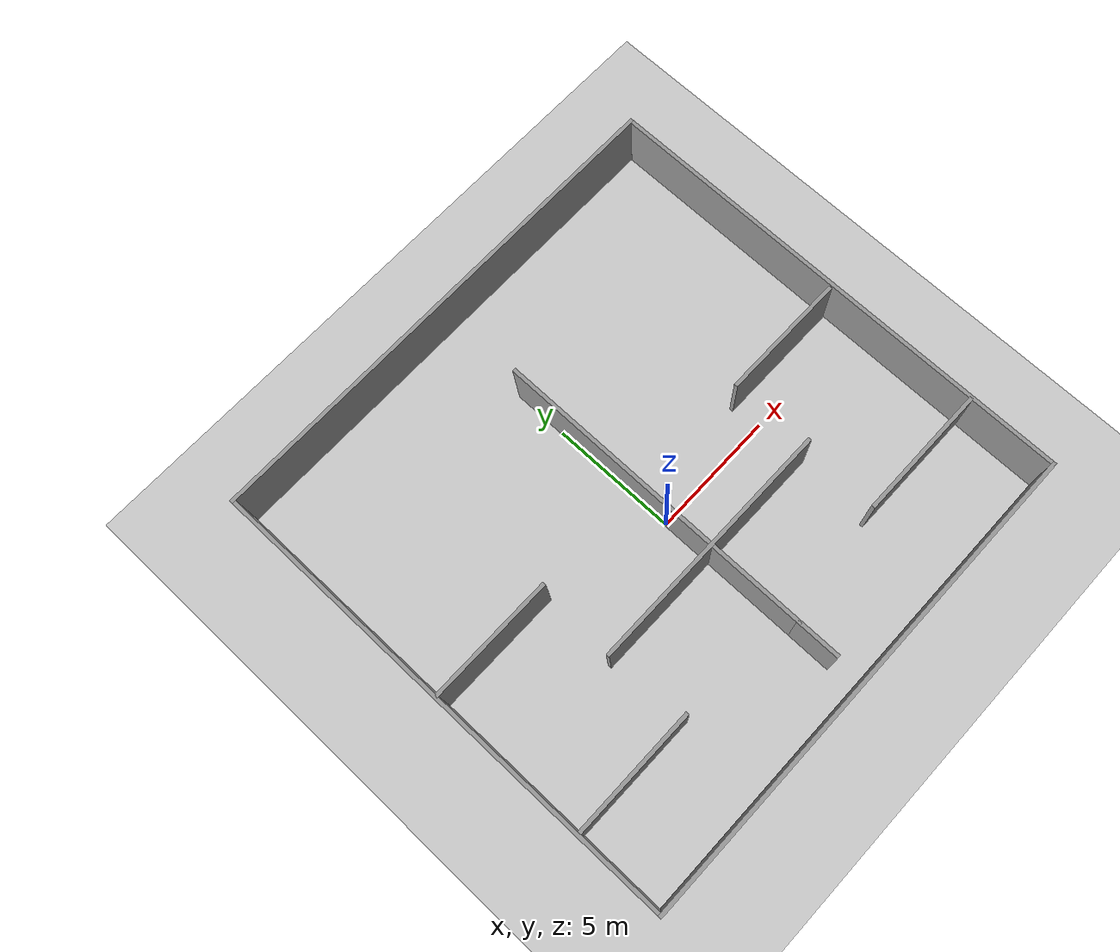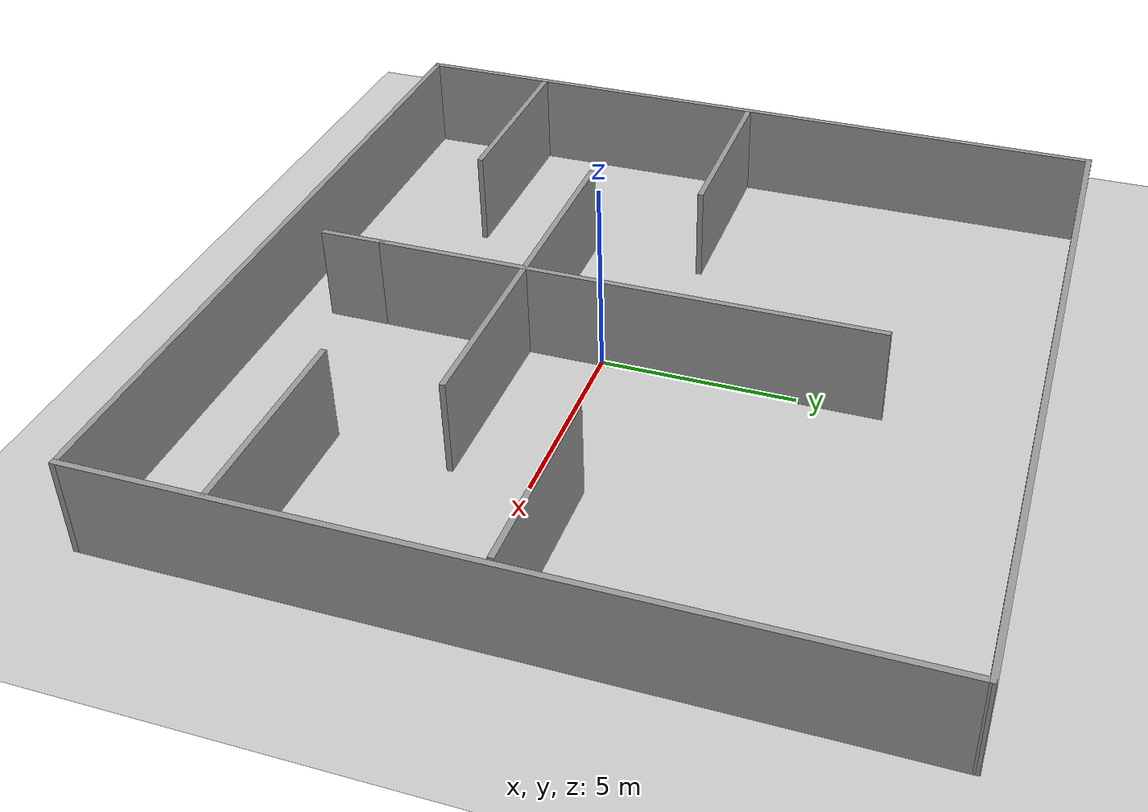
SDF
<sdf version="1.7">
 <world name="default">
  <light name="sun" type="directional">
   <pose>0 0 10 0 -0 0</pose>
   <diffuse>0.8 0.8 0.8 1</diffuse>
   <specular>0.2 0.2 0.2 1</specular>
   <attenuation>
    <range>1000</range>
    <constant>0.9</constant>
    <linear>0.01</linear>
    <quadratic>0.001</quadratic>
   </attenuation>
   <direction>-0.5 0.1 -0.9</direction>
   <spot><inner_angle>0</inner_angle><outer_angle>0</outer_angle><falloff>0</falloff></spot>
  </light>
  <model name="ground_plane">
   <static>1</static>
   <link name="link">
    <collision name="collision">
     <geometry><plane><normal>0 0 1</normal><size>100 100</size></plane></geometry>
     <surface>
      <contact><collide_bitmask>65535</collide_bitmask></contact>
      <friction><ode><mu>100</mu><mu2>50</mu2></ode></friction>
     </surface>
    </collision>
    <visual name="visual">
     <cast_shadows>0</cast_shadows>
     <geometry><plane><normal>0 0 1</normal><size>100 100</size></plane></geometry>
     <material>
      <script><uri>file://media/materials/scripts/gazebo.material</uri><name>Gazebo/Grey</name></script>
     </material>
    </visual>
   </link>
  </model>
  <gravity>0 0 -9.8</gravity>
  <magnetic_field>6e-06 2.3e-05 -4.2e-05</magnetic_field>
  <atmosphere type="adiabatic"/>
  <physics type="ode">
   <max_step_size>0.001</max_step_size>
   <real_time_factor>1</real_time_factor>
   <real_time_update_rate>1000</real_time_update_rate>
  </physics>
  <scene><ambient>0.4 0.4 0.4 1</ambient><background>0.7 0.7 0.7 1</background><shadows>1</shadows></scene>
  <audio><device>default</device></audio>
  <spherical_coordinates>
   <surface_model>EARTH_WGS84</surface_model>
   <latitude_deg>0</latitude_deg>
   <longitude_deg>0</longitude_deg>
   <elevation>0</elevation>
   <heading_deg>0</heading_deg>
  </spherical_coordinates>
  <model name="D1_playfield">
   <pose>0.106845 1.10204 0 0 -0 0</pose>
   <link name="Wall_0">
    <collision name="Wall_0_Collision">
     <geometry><box><size>19.704 0.15 2.5</size></box></geometry>
     <pose>0 0 1.25 0 -0 0</pose>
    </collision>
    <visual name="Wall_0_Visual">
     <pose>0 0 1.25 0 -0 0</pose>
     <geometry><box><size>19.704 0.15 2.5</size></box></geometry>
     <material>
      <script><uri>file://media/materials/scripts/gazebo.material</uri><name>Gazebo/Grey</name></script>
      <ambient>1 1 1 1</ambient>
     </material>
     <meta><layer>0</layer></meta>
    </visual>
    <pose>-0 9.66923 0 0 -0 0.002101</pose>
   </link>
   <link name="Wall_1">
    <collision name="Wall_1_Collision">
     <geometry><box><size>19.5 0.15 2.5</size></box></geometry>
     <pose>0 0 1.25 0 -0 0</pose>
    </collision>
    <visual name="Wall_1_Visual">
     <pose>0 0 1.25 0 -0 0</pose>
     <geometry><box><size>19.5 0.15 2.5</size></box></geometry>
     <material>
      <script><uri>file://media/materials/scripts/gazebo.material</uri><name>Gazebo/Grey</name></script>
      <ambient>1 1 1 1</ambient>
     </material>
     <meta><layer>0</layer></meta>
    </visual>
    <pose>9.77699 -0.002623 0 0 -0 -1.5708</pose>
   </link>
   <link name="Wall_11">
    <collision name="Wall_11_Collision">
     <geometry><box><size>10 0.15 2.5</size></box></geometry>
     <pose>0 0 1.25 0 -0 0</pose>
    </collision>
    <visual name="Wall_11_Visual">
     <pose>0 0 1.25 0 -0 0</pose>
     <geometry><box><size>10 0.15 2.5</size></box></geometry>
     <material>
      <script><uri>file://media/materials/scripts/gazebo.material</uri><name>Gazebo/Grey</name></script>
      <ambient>1 1 1 1</ambient>
     </material>
     <meta><layer>0</layer></meta>
    </visual>
    <pose>-0.097983 -3.0741 0 0 -0 0</pose>
   </link>
   <link name="Wall_13">
    <collision name="Wall_13_Collision">
     <geometry><box><size>5 0.15 2.5</size></box></geometry>
     <pose>0 0 1.25 0 -0 0</pose>
    </collision>
    <visual name="Wall_13_Visual">
     <pose>0 0 1.25 0 -0 0</pose>
     <geometry><box><size>5 0.15 2.5</size></box></geometry>
     <material>
      <script><uri>file://media/materials/scripts/gazebo.material</uri><name>Gazebo/Grey</name></script>
      <ambient>1 1 1 1</ambient>
     </material>
     <meta><layer>0</layer></meta>
    </visual>
    <pose>-7.20545 -6.1904 0 0 -0 0</pose>
   </link>
   <link name="Wall_15">
    <collision name="Wall_15_Collision">
     <geometry><box><size>5.25 0.15 2.5</size></box></geometry>
     <pose>0 0 1.25 0 -0 0</pose>
    </collision>
    <visual name="Wall_15_Visual">
     <pose>0 0 1.25 0 -0 0</pose>
     <geometry><box><size>5.25 0.15 2.5</size></box></geometry>
     <material>
      <script><uri>file://media/materials/scripts/gazebo.material</uri><name>Gazebo/Grey</name></script>
      <ambient>1 1 1 1</ambient>
     </material>
     <meta><layer>0</layer></meta>
    </visual>
    <pose>7.13598 -6.17051 0 0 -0 0</pose>
   </link>
   <link name="Wall_17">
    <collision name="Wall_17_Collision">
     <geometry><box><size>1.75 0.15 2.5</size></box></geometry>
     <pose>0 0 1.25 0 -0 0</pose>
    </collision>
    <visual name="Wall_17_Visual">
     <pose>0 0 1.25 0 -0 0</pose>
     <geometry><box><size>1.75 0.15 2.5</size></box></geometry>
     <material>
      <script><uri>file://media/materials/scripts/gazebo.material</uri><name>Gazebo/Grey</name></script>
      <ambient>1 1 1 1</ambient>
     </material>
     <meta><layer>0</layer></meta>
    </visual>
    <pose>-0.081444 -7.69984 0 0 -0 1.5708</pose>
   </link>
   <link name="Wall_18">
    <collision name="Wall_18_Collision">
     <geometry><box><size>13 0.15 2.5</size></box></geometry>
     <pose>0 0 1.25 0 -0 0</pose>
    </collision>
    <visual name="Wall_18_Visual">
     <pose>0 0 1.25 0 -0 0</pose>
     <geometry><box><size>13 0.15 2.5</size></box></geometry>
     <material>
      <script><uri>file://media/materials/scripts/gazebo.material</uri><name>Gazebo/Grey</name></script>
      <ambient>1 1 1 1</ambient>
     </material>
     <meta><layer>0</layer></meta>
    </visual>
    <pose>-0.081444 -0.474839 0 0 -0 1.5708</pose>
   </link>
   <link name="Wall_2">
    <collision name="Wall_2_Collision">
     <geometry><box><size>19.704 0.15 2.5</size></box></geometry>
     <pose>0 0 1.25 0 -0 0</pose>
    </collision>
    <visual name="Wall_2_Visual">
     <pose>0 0 1.25 0 -0 0</pose>
     <geometry><box><size>19.704 0.15 2.5</size></box></geometry>
     <material>
      <script><uri>file://media/materials/scripts/gazebo.material</uri><name>Gazebo/Grey</name></script>
      <ambient>1 1 1 1</ambient>
     </material>
     <meta><layer>0</layer></meta>
    </visual>
    <pose>-0 -9.68375 0 0 -0 -3.14097</pose>
   </link>
   <link name="Wall_5">
    <collision name="Wall_5_Collision">
     <geometry><box><size>19.5 0.15 2.5</size></box></geometry>
     <pose>0 0 1.25 0 -0 0</pose>
    </collision>
    <visual name="Wall_5_Visual">
     <pose>0 0 1.25 0 -0 0</pose>
     <geometry><box><size>19.5 0.15 2.5</size></box></geometry>
     <material>
      <script><uri>file://media/materials/scripts/gazebo.material</uri><name>Gazebo/Grey</name></script>
      <ambient>1 1 1 1</ambient>
     </material>
     <meta><layer>0</layer></meta>
    </visual>
    <pose>-9.77699 -0.014879 0 0 -0 -1.5708</pose>
   </link>
   <link name="Wall_7">
    <collision name="Wall_7_Collision">
     <geometry><box><size>5 0.15 2.5</size></box></geometry>
     <pose>0 0 1.25 0 -0 0</pose>
    </collision>
    <visual name="Wall_7_Visual">
     <pose>0 0 1.25 0 -0 0</pose>
     <geometry><box><size>5 0.15 2.5</size></box></geometry>
     <material>
      <script><uri>file://media/materials/scripts/gazebo.material</uri><name>Gazebo/Grey</name></script>
      <ambient>1 1 1 1</ambient>
     </material>
     <meta><layer>0</layer></meta>
    </visual>
    <pose>-7.26715 0.066508 0 0 -0 0</pose>
   </link>
   <link name="Wall_9">
    <collision name="Wall_9_Collision">
     <geometry><box><size>5 0.15 2.5</size></box></geometry>
     <pose>0 0 1.25 0 -0 0</pose>
    </collision>
    <visual name="Wall_9_Visual">
     <pose>0 0 1.25 0 -0 0</pose>
     <geometry><box><size>5 0.15 2.5</size></box></geometry>
     <material>
      <script><uri>file://media/materials/scripts/gazebo.material</uri><name>Gazebo/Grey</name></script>
      <ambient>1 1 1 1</ambient>
     </material>
     <meta><layer>0</layer></meta>
    </visual>
    <pose>7.14405 0.042789 0 0 -0 0</pose>
   </link>
   <static>1</static>
  </model>
 </world>
</sdf>
